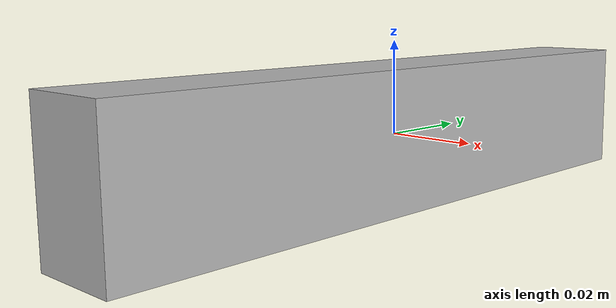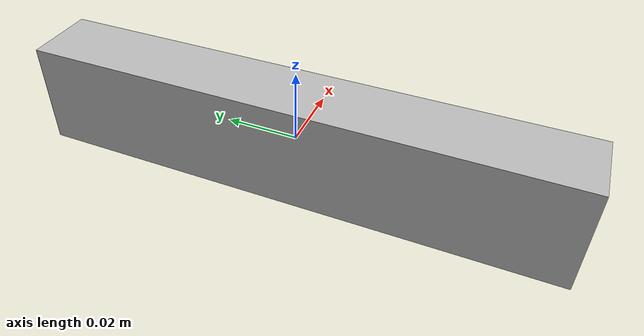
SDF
<?xml version="1.0" ?>
<sdf version="1.4">
    <model name="depth_camera">
        <link name="link">
            <inertial>
                <pose>0.01 0.025 0.025 0 -0 0</pose>
                <mass>0.01</mass>
                <inertia>
                    <ixx>4.15e-6</ixx>
                    <ixy>0</ixy>
                    <ixz>0</ixz>
                    <iyy>2.407e-6</iyy>
                    <iyz>0</iyz>
                    <izz>2.407e-6</izz>
                </inertia>
            </inertial>
            <visual name="visual">
                <geometry>
                    <box>
                        <size>0.02 0.15 0.03</size>
                    </box>
                </geometry>
            </visual>

            <!--752x480 MT9V034 image sensor, only 64x64 pixels used-->
            <sensor name="depthcam" type="depth">
                <always_on>true</always_on>
                <update_rate>100.0</update_rate>
                <visualize>true</visualize>
                <topic>/depthcam</topic>
                <camera>
                    <horizontal_fov>1.5</horizontal_fov>
                    <image>
                        <width>640</width>
                        <height>480</height>
                    </image>
                    <clip>
                        <near>0.1</near>
                        <far>100</far>
                    </clip>
                    <noise>
                        <type>gaussian</type>
                        <mean>0.0</mean>
                        <stddev>0.001</stddev>
                    </noise>
                </camera>
                <plugin name="camera_controller" filename="libgazebo_ros_openni_kinect.so">
                    <alwaysOn>true</alwaysOn>
                    <updateRate>30.0</updateRate>
                    <cameraName>dcu/depth_camera</cameraName>
                    <imageTopicName>image_raw</imageTopicName>

					<depthImageTopicName>depth/image_raw</depthImageTopicName>
					<pointCloudTopicName>depth/points</pointCloudTopicName>
					<depthImageCameraInfoTopicName>depth/camera_info</depthImageCameraInfoTopicName>
					<pointCloudCutoff>0.001</pointCloudCutoff>
					<pointCloudCutoffMax>20</pointCloudCutoffMax>

					<cameraInfoTopicName>camera_info</cameraInfoTopicName>
                    <frameName>camera_link</frameName>
                    <hackBaseline>0.07</hackBaseline>
                    <distortionK1>0.0</distortionK1>
                    <distortionK2>0.0</distortionK2>
                    <distortionK3>0.0</distortionK3>
                    <distortionT1>0.0</distortionT1>
                    <distortionT2>0.0</distortionT2>

                </plugin>
            </sensor>

        </link>

    </model>
</sdf>
<!-- vim: set et fenc=utf-8 ff=unix sts=0 sw=4 ts=4 : -->
